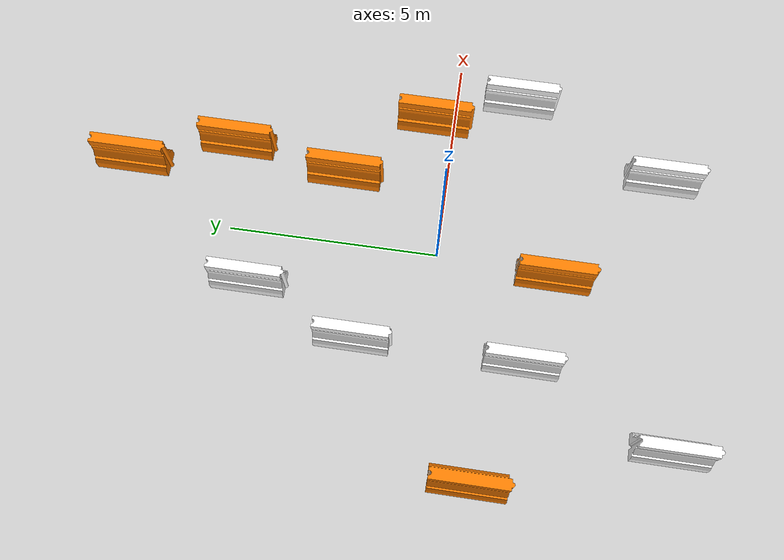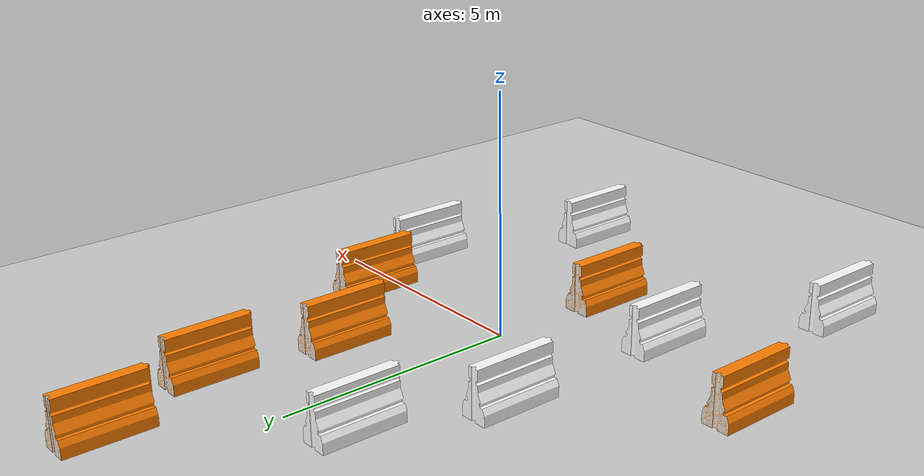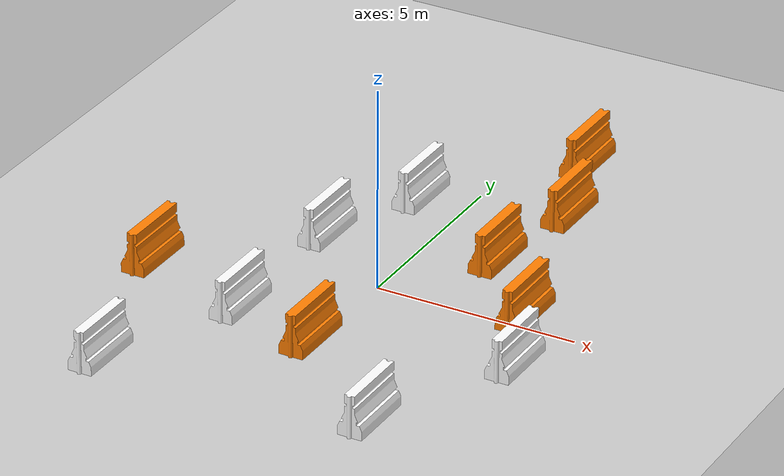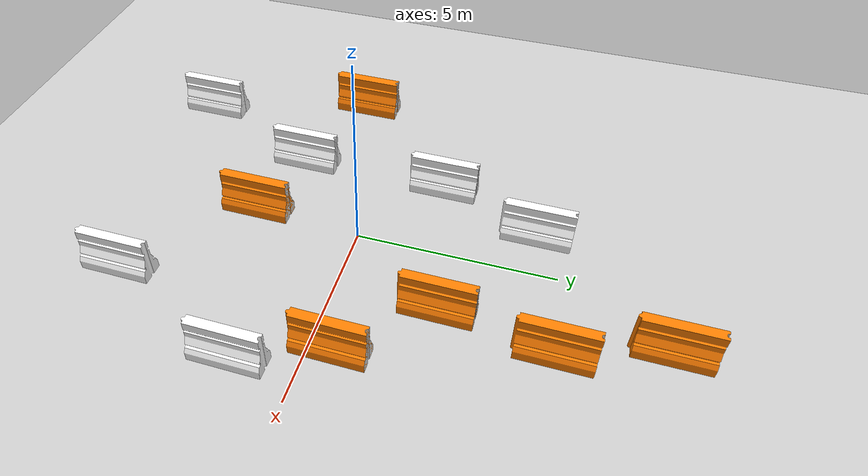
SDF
<sdf version="1.7">
 <world name="default">
  <light name="sun" type="directional">
   <pose>0 0 10 0 -0 0</pose>
   <diffuse>0.8 0.8 0.8 1</diffuse>
   <specular>0.2 0.2 0.2 1</specular>
   <attenuation>
    <range>1000</range>
    <constant>0.9</constant>
    <linear>0.01</linear>
    <quadratic>0.001</quadratic>
   </attenuation>
   <direction>-0.5 0.1 -0.9</direction>
   <spot><inner_angle>0</inner_angle><outer_angle>0</outer_angle><falloff>0</falloff></spot>
  </light>
  <model name="ground_plane">
   <static>1</static>
   <link name="link">
    <collision name="collision">
     <geometry><plane><normal>0 0 1</normal><size>100 100</size></plane></geometry>
     <surface>
      <contact><collide_bitmask>65535</collide_bitmask></contact>
      <friction><ode><mu>100</mu><mu2>50</mu2></ode></friction>
     </surface>
    </collision>
    <visual name="visual">
     <cast_shadows>0</cast_shadows>
     <geometry><plane><normal>0 0 1</normal><size>100 100</size></plane></geometry>
     <material>
      <script><uri>file://media/materials/scripts/gazebo.material</uri><name>Gazebo/Grey</name></script>
     </material>
    </visual>
   </link>
  </model>
  <gravity>0 0 -9.8</gravity>
  <magnetic_field>6e-06 2.3e-05 -4.2e-05</magnetic_field>
  <atmosphere type="adiabatic"/>
  <physics type="ode">
   <max_step_size>0.001</max_step_size>
   <real_time_factor>1</real_time_factor>
   <real_time_update_rate>1000</real_time_update_rate>
  </physics>
  <scene><ambient>0.4 0.4 0.4 1</ambient><background>0.7 0.7 0.7 1</background><shadows>1</shadows></scene>
  <audio><device>default</device></audio>
  <spherical_coordinates>
   <surface_model>EARTH_WGS84</surface_model>
   <latitude_deg>0</latitude_deg>
   <longitude_deg>0</longitude_deg>
   <elevation>0</elevation>
   <heading_deg>0</heading_deg>
  </spherical_coordinates>
  <model name="drc_practice_organge_jersey_barrier">
   <static>1</static>
   <link name="link">
    <visual name="visual">
     <geometry>
      <mesh><uri>model://drc_practice_orange_jersey_barrier/meshes/jersey_barrier.dae</uri></mesh>
     </geometry>
    </visual>
    <collision name="collision">
     <geometry>
      <mesh><uri>model://drc_practice_orange_jersey_barrier/meshes/jersey_barrier.dae</uri></mesh>
     </geometry>
    </collision>
   </link>
   <pose>-5.16078 -1.32734 0 0 -0 0</pose>
  </model>
  <model name="drc_practice_white_jersey_barrier">
   <static>1</static>
   <link name="link">
    <visual name="visual">
     <geometry>
      <mesh><uri>model://drc_practice_white_jersey_barrier/meshes/jersey_barrier.dae</uri></mesh>
     </geometry>
    </visual>
    <collision name="collision">
     <geometry>
      <mesh><uri>model://drc_practice_white_jersey_barrier/meshes/jersey_barrier.dae</uri></mesh>
     </geometry>
    </collision>
   </link>
   <pose>-2.26622 1.67878 0 0 -0 0</pose>
  </model>
  <model name="drc_practice_organge_jersey_barrier_0">
   <static>1</static>
   <link name="link">
    <visual name="visual">
     <geometry>
      <mesh><uri>model://drc_practice_orange_jersey_barrier/meshes/jersey_barrier.dae</uri></mesh>
     </geometry>
    </visual>
    <collision name="collision">
     <geometry>
      <mesh><uri>model://drc_practice_orange_jersey_barrier/meshes/jersey_barrier.dae</uri></mesh>
     </geometry>
    </collision>
   </link>
   <pose>1.76563 2.48398 0 0 -0 0</pose>
  </model>
  <model name="drc_practice_white_jersey_barrier_0">
   <static>1</static>
   <link name="link">
    <visual name="visual">
     <geometry>
      <mesh><uri>model://drc_practice_white_jersey_barrier/meshes/jersey_barrier.dae</uri></mesh>
     </geometry>
    </visual>
    <collision name="collision">
     <geometry>
      <mesh><uri>model://drc_practice_white_jersey_barrier/meshes/jersey_barrier.dae</uri></mesh>
     </geometry>
    </collision>
   </link>
   <pose>-3.86779 -5.66411 0 0 -0 0</pose>
  </model>
  <model name="drc_practice_organge_jersey_barrier_1">
   <static>1</static>
   <link name="link">
    <visual name="visual">
     <geometry>
      <mesh><uri>model://drc_practice_orange_jersey_barrier/meshes/jersey_barrier.dae</uri></mesh>
     </geometry>
    </visual>
    <collision name="collision">
     <geometry>
      <mesh><uri>model://drc_practice_orange_jersey_barrier/meshes/jersey_barrier.dae</uri></mesh>
     </geometry>
    </collision>
   </link>
   <pose>-0.172675 -2.76619 0 0 -0 0</pose>
  </model>
  <model name="drc_practice_white_jersey_barrier_1">
   <static>1</static>
   <link name="link">
    <visual name="visual">
     <geometry>
      <mesh><uri>model://drc_practice_white_jersey_barrier/meshes/jersey_barrier.dae</uri></mesh>
     </geometry>
    </visual>
    <collision name="collision">
     <geometry>
      <mesh><uri>model://drc_practice_white_jersey_barrier/meshes/jersey_barrier.dae</uri></mesh>
     </geometry>
    </collision>
   </link>
   <pose>4.30468 -1.52414 0 0 -0 0</pose>
  </model>
  <model name="drc_practice_white_jersey_barrier_2">
   <static>1</static>
   <link name="link">
    <visual name="visual">
     <geometry>
      <mesh><uri>model://drc_practice_white_jersey_barrier/meshes/jersey_barrier.dae</uri></mesh>
     </geometry>
    </visual>
    <collision name="collision">
     <geometry>
      <mesh><uri>model://drc_practice_white_jersey_barrier/meshes/jersey_barrier.dae</uri></mesh>
     </geometry>
    </collision>
   </link>
   <pose>-1.22476 4.29669 0 0 -0 0</pose>
  </model>
  <model name="drc_practice_organge_jersey_barrier_2">
   <static>1</static>
   <link name="link">
    <visual name="visual">
     <geometry>
      <mesh><uri>model://drc_practice_orange_jersey_barrier/meshes/jersey_barrier.dae</uri></mesh>
     </geometry>
    </visual>
    <collision name="collision">
     <geometry>
      <mesh><uri>model://drc_practice_orange_jersey_barrier/meshes/jersey_barrier.dae</uri></mesh>
     </geometry>
    </collision>
   </link>
   <pose>3.49743 0.517543 0 0 -0 0</pose>
  </model>
  <model name="drc_practice_white_jersey_barrier_3">
   <static>1</static>
   <link name="link">
    <visual name="visual">
     <geometry>
      <mesh><uri>model://drc_practice_white_jersey_barrier/meshes/jersey_barrier.dae</uri></mesh>
     </geometry>
    </visual>
    <collision name="collision">
     <geometry>
      <mesh><uri>model://drc_practice_white_jersey_barrier/meshes/jersey_barrier.dae</uri></mesh>
     </geometry>
    </collision>
   </link>
   <pose>2.64574 -5.14564 0 0 -0 0</pose>
  </model>
  <model name="drc_practice_organge_jersey_barrier_3">
   <static>1</static>
   <link name="link">
    <visual name="visual">
     <geometry>
      <mesh><uri>model://drc_practice_orange_jersey_barrier/meshes/jersey_barrier.dae</uri></mesh>
     </geometry>
    </visual>
    <collision name="collision">
     <geometry>
      <mesh><uri>model://drc_practice_orange_jersey_barrier/meshes/jersey_barrier.dae</uri></mesh>
     </geometry>
    </collision>
   </link>
   <pose>1.44843 7.65673 0 0 -0 0</pose>
  </model>
  <model name="drc_practice_white_jersey_barrier_4">
   <static>1</static>
   <link name="link">
    <visual name="visual">
     <geometry>
      <mesh><uri>model://drc_practice_white_jersey_barrier/meshes/jersey_barrier.dae</uri></mesh>
     </geometry>
    </visual>
    <collision name="collision">
     <geometry>
      <mesh><uri>model://drc_practice_white_jersey_barrier/meshes/jersey_barrier.dae</uri></mesh>
     </geometry>
    </collision>
   </link>
   <pose>-2.31131 -2.21571 0 0 -0 0</pose>
  </model>
  <model name="drc_practice_organge_jersey_barrier_4">
   <static>1</static>
   <link name="link">
    <visual name="visual">
     <geometry>
      <mesh><uri>model://drc_practice_orange_jersey_barrier/meshes/jersey_barrier.dae</uri></mesh>
     </geometry>
    </visual>
    <collision name="collision">
     <geometry>
      <mesh><uri>model://drc_practice_orange_jersey_barrier/meshes/jersey_barrier.dae</uri></mesh>
     </geometry>
    </collision>
   </link>
   <pose>2.2216 5.20371 0 0 -0 0</pose>
  </model>
 </world>
</sdf>
